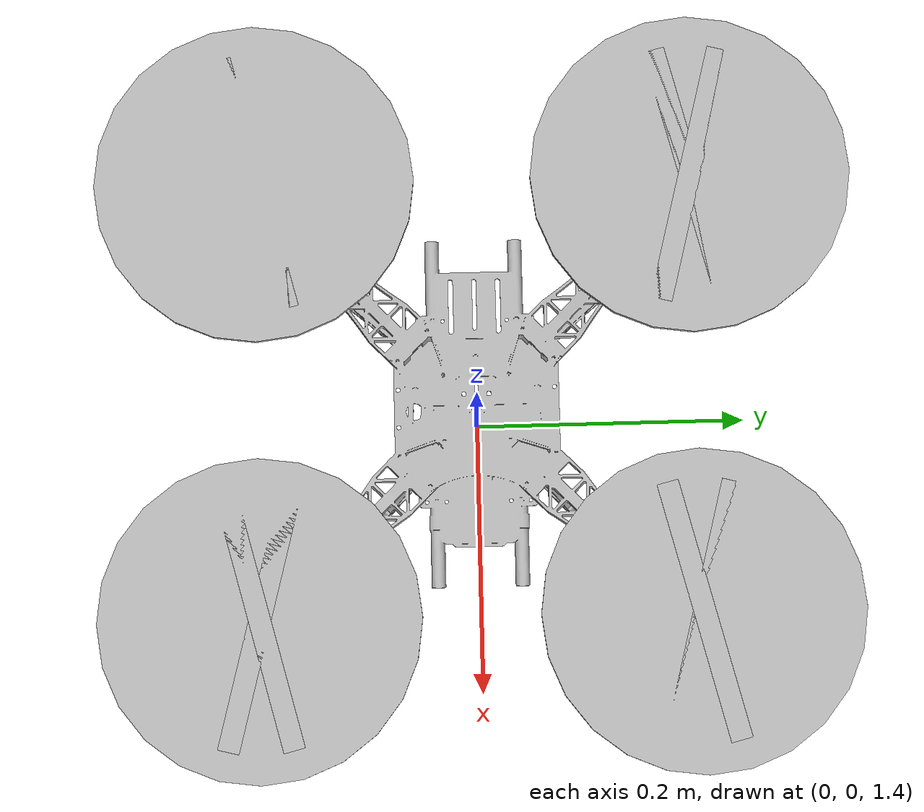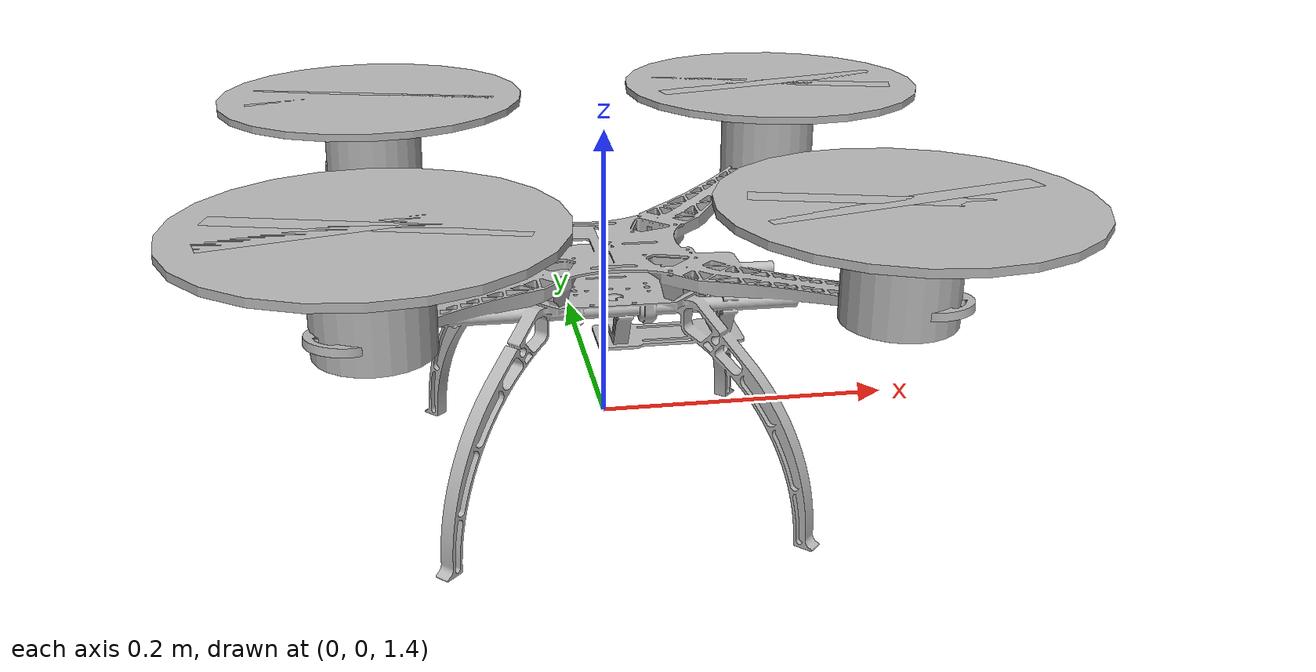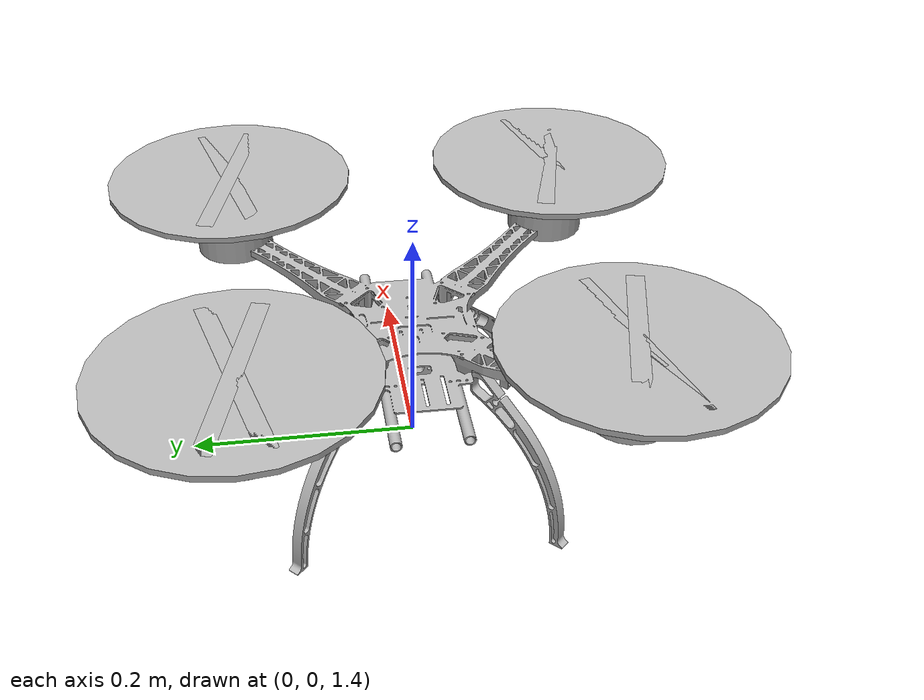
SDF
<?xml version="1.0" ?>
<sdf version="1.10">

  <world name="mundo_s500">
<!-- Quadricoptero -->
    <include>
      <uri>model://quadricoptero</uri>
      <name>quadricoptero</name>
      <pose>0 0 1 0 0 0</pose>
    </include>
    <!-- Physics -->
    <plugin filename="gz-sim-physics-system"
            name="gz::sim::systems::Physics">
    </plugin>

    <!-- Scene -->
    <plugin filename="gz-sim-scene-broadcaster-system"
            name="gz::sim::systems::SceneBroadcaster">
    </plugin>

    <!-- Sensors -->
    <plugin filename="gz-sim-sensors-system"
            name="gz::sim::systems::Sensors">
        <render_engine>ogre2</render_engine>
    </plugin>

    <!-- IMU -->
    <plugin filename="gz-sim-imu-system"
            name="gz::sim::systems::Imu">
    </plugin>

    <!-- Gravidade -->
    <gravity>0 0 -9.81</gravity>

    <!-- Física -->
    <physics name="default_physics" type="ode">
      <max_step_size>0.001</max_step_size>
      <real_time_factor>1</real_time_factor>
      <real_time_update_rate>1000</real_time_update_rate>

    <!-- Sol -->
    <light name="sol" type="directional">
      <pose>0 0 10 0 0 0</pose>
      <cast_shadows>true</cast_shadows>
      <direction>-0.5 0.5 -1</direction>
    </light>

    <!-- Chão -->
    <model name="chao">
      <static>true</static>
      <link name="link">

        <collision name="collision">
          <geometry>
            <plane>
              <normal>0 0 1</normal>
              <size>100 100</size>
            </plane>
          </geometry>
        </collision>

        <visual name="visual">
          <geometry>
            <plane>
              <normal>0 0 1</normal>
              <size>100 100</size>
            </plane>
          </geometry>
        </visual>

      </link>
    </model>
    </physics>
  </world>
</sdf>

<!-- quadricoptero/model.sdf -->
<sdf version="1.10">

  <model name="quadricoptero">

    <!-- Corpo físico principal -->
    <link name="base_link">

      <pose>0 0 0.5 0 0 0</pose>

      <inertial>
        <mass>1.5</mass>
        <inertia>
          <ixx>0.02</ixx>
          <iyy>0.02</iyy>
          <izz>0.03</izz>
          <ixy>0</ixy>
          <ixz>0</ixz>
          <iyz>0</iyz>
        </inertia>
      </inertial>

      <!-- Colisão simplificada -->
      <collision name="collision">
        <geometry>
          <box>
            <size>0.40 0.40 0.15</size>
          </box>
        </geometry>
      </collision>

      <!-- Modelo 3D do S500 vindo do Ansys -->
      <visual name="s500_visual">

        <geometry>
          <mesh>
            <uri>model://quadricoptero/meshes/S500_Frame.stl</uri>
            <scale>1 1 1</scale>
          </mesh>
        </geometry>

      </visual>
      <!-- MOTORES DO S500 - VISUAL -->

      <!-- Motor 1 -->
      <visual name="motor_1_visual">
        <pose>0.15 0.15 0.05 0 0 0</pose>
        <geometry>
          <cylinder>
            <radius>0.035</radius>
            <length>0.06</length>
          </cylinder>
        </geometry>
      </visual>

      <!-- Motor 2 -->
      <visual name="motor_2_visual">
        <pose>-0.15 0.15 0.05 0 0 0</pose>
        <geometry>
          <cylinder>
            <radius>0.035</radius>
            <length>0.06</length>
          </cylinder>
        </geometry>
      </visual>

      <!-- Motor 3 -->
      <visual name="motor_3_visual">
        <pose>-0.15 -0.15 0.05 0 0 0</pose>
        <geometry>
          <cylinder>
            <radius>0.035</radius>
            <length>0.06</length>
          </cylinder>
        </geometry>
      </visual>

      <!-- Motor 4 -->
      <visual name="motor_4_visual">
        <pose>0.15 -0.15 0.05 0 0 0</pose>
        <geometry>
          <cylinder>
            <radius>0.035</radius>
            <length>0.06</length>
          </cylinder>
        </geometry>
      </visual>
<!-- ==================== HÉLICES ==================== -->

<!-- Hélice do Motor 1 -->
<visual name="helice_1_a">
  <pose>0.15 0.15 0.09 0 0 0.25</pose>
  <geometry>
    <box>
      <size>0.18 0.015 0.005</size>
    </box>
  </geometry>
</visual>

<visual name="helice_1_b">
  <pose>0.15 0.15 0.09 0 0 -0.25</pose>
  <geometry>
    <box>
      <size>0.18 0.015 0.005</size>
    </box>
  </geometry>
</visual>

<!-- Hélice do Motor 2 -->
<visual name="helice_2_a">
  <pose>-0.15 0.15 0.09 0 0 -0.25</pose>
  <geometry>
    <box>
      <size>0.18 0.015 0.005</size>
    </box>
  </geometry>
</visual>

<visual name="helice_2_b">
  <pose>-0.15 0.15 0.09 0 0 0.25</pose>
  <geometry>
    <box>
      <size>0.18 0.015 0.005</size>
    </box>
  </geometry>
</visual>

<!-- Hélice do Motor 3 -->
<visual name="helice_3_a">
  <pose>-0.15 -0.15 0.09 0 0 0.25</pose>
  <geometry>
    <box>
      <size>0.18 0.015 0.005</size>
    </box>
  </geometry>
</visual>

<visual name="helice_3_b">
  <pose>-0.15 -0.15 0.09 0 0 -0.25</pose>
  <geometry>
    <box>
      <size>0.18 0.015 0.005</size>
    </box>
  </geometry>
</visual>

<!-- Hélice do Motor 4 -->
<visual name="helice_4_a">
  <pose>0.15 -0.15 0.09 0 0 -0.25</pose>
  <geometry>
    <box>
      <size>0.18 0.015 0.005</size>
    </box>
  </geometry>
</visual>

<visual name="helice_4_b">
  <pose>0.15 -0.15 0.09 0 0 0.25</pose>
  <geometry>
    <box>
      <size>0.18 0.015 0.005</size>
    </box>
  </geometry>
</visual>
  <!-- ==================== IMU ==================== -->
<sensor name="imu_sensor" type="imu">
  <pose>0 0 0 0 0 0</pose>
  <always_on>1</always_on>
  <update_rate>200</update_rate>
  <visualize>false</visualize>
  <topic>imu</topic>
</sensor>
</link>
<!--                    ROTOR 1 - CCW                         -->

<link name="rotor_1">
  <pose>0.15 0.15 0.59 0 0 0</pose>

  <inertial>
    <mass>0.03</mass>
    <inertia>
      <ixx>0.00001</ixx>
      <iyy>0.00001</iyy>
      <izz>0.00002</izz>
      <ixy>0</ixy>
      <ixz>0</ixz>
      <iyz>0</iyz>
    </inertia>
  </inertial>

  <visual name="rotor_1_visual">
    <geometry>
      <cylinder>
        <radius>0.11</radius>
        <length>0.005</length>
      </cylinder>
    </geometry>
  </visual>
</link>

<joint name="rotor_1_joint" type="revolute">
  <parent>base_link</parent>
  <child>rotor_1</child>

  <axis>
    <xyz>0 0 1</xyz>
    <limit>
      <lower>-1e16</lower>
      <upper>1e16</upper>
    </limit>
    <dynamics>
      <damping>0.0001</damping>
    </dynamics>
  </axis>
</joint>

<!--                    ROTOR 2 - CW                          -->

<link name="rotor_2">
  <pose>-0.15 0.15 0.59 0 0 0</pose>

  <inertial>
    <mass>0.03</mass>
    <inertia>
      <ixx>0.00001</ixx>
      <iyy>0.00001</iyy>
      <izz>0.00002</izz>
      <ixy>0</ixy>
      <ixz>0</ixz>
      <iyz>0</iyz>
    </inertia>
  </inertial>

  <visual name="rotor_2_visual">
    <geometry>
      <cylinder>
        <radius>0.11</radius>
        <length>0.005</length>
      </cylinder>
    </geometry>
  </visual>
</link>

<joint name="rotor_2_joint" type="revolute">
  <parent>base_link</parent>
  <child>rotor_2</child>

  <axis>
    <xyz>0 0 1</xyz>
    <limit>
      <lower>-1e16</lower>
      <upper>1e16</upper>
    </limit>
    <dynamics>
      <damping>0.0001</damping>
    </dynamics>
  </axis>
</joint>

<!--                    ROTOR 3 - CW                          -->

<link name="rotor_3">
  <pose>-0.15 -0.15 0.59 0 0 0</pose>

  <inertial>
    <mass>0.03</mass>
    <inertia>
      <ixx>0.00001</ixx>
      <iyy>0.00001</iyy>
      <izz>0.00002</izz>
      <ixy>0</ixy>
      <ixz>0</ixz>
      <iyz>0</iyz>
    </inertia>
  </inertial>

  <visual name="rotor_3_visual">
    <geometry>
      <cylinder>
        <radius>0.11</radius>
        <length>0.005</length>
      </cylinder>
    </geometry>
  </visual>
</link>

<joint name="rotor_3_joint" type="revolute">
  <parent>base_link</parent>
  <child>rotor_3</child>

  <axis>
    <xyz>0 0 1</xyz>
    <limit>
      <lower>-1e16</lower>
      <upper>1e16</upper>
    </limit>
    <dynamics>
      <damping>0.0001</damping>
    </dynamics>
  </axis>
</joint>

<!--                    ROTOR 4 - CCW                         -->

<link name="rotor_4">
  <pose>0.15 -0.15 0.59 0 0 0</pose>

  <inertial>
    <mass>0.03</mass>
    <inertia>
      <ixx>0.00001</ixx>
      <iyy>0.00001</iyy>
      <izz>0.00002</izz>
      <ixy>0</ixy>
      <ixz>0</ixz>
      <iyz>0</iyz>
    </inertia>
  </inertial>

  <visual name="rotor_4_visual">
    <geometry>
      <cylinder>
        <radius>0.11</radius>
        <length>0.005</length>
      </cylinder>
    </geometry>
  </visual>
</link>

<joint name="rotor_4_joint" type="revolute">
  <parent>base_link</parent>
  <child>rotor_4</child>

  <axis>
    <xyz>0 0 1</xyz>
    <limit>
      <lower>-1e16</lower>
      <upper>1e16</upper>
    </limit>
    <dynamics>
      <damping>0.0001</damping>
    </dynamics>
  </axis>
</joint>

<!--             FÍSICA DO MOTOR / EMPUXO 1                   -->

<plugin
    filename="gz-sim-multicopter-motor-model-system"
    name="gz::sim::systems::MulticopterMotorModel">

  <robotNamespace>S500</robotNamespace>

  <jointName>rotor_1_joint</jointName>
  <linkName>rotor_1</linkName>

  <turningDirection>ccw</turningDirection>

  <timeConstantUp>0.0125</timeConstantUp>
  <timeConstantDown>0.025</timeConstantDown>

  <maxRotVelocity>800.0</maxRotVelocity>

  <motorConstant>8.54858e-06</motorConstant>
  <momentConstant>0.016</momentConstant>

  <commandSubTopic>gazebo/command/motor_speed</commandSubTopic>

  <actuator_number>0</actuator_number>

  <rotorDragCoefficient>8.06428e-05</rotorDragCoefficient>
  <rollingMomentCoefficient>1e-06</rollingMomentCoefficient>

  <motorSpeedPubTopic>motor_speed/0</motorSpeedPubTopic>

  <rotorVelocitySlowdownSim>10</rotorVelocitySlowdownSim>

  <motorType>velocity</motorType>

</plugin>

<!--             FÍSICA DO MOTOR / EMPUXO 2                   -->

<plugin
    filename="gz-sim-multicopter-motor-model-system"
    name="gz::sim::systems::MulticopterMotorModel">

  <robotNamespace>S500</robotNamespace>

  <jointName>rotor_2_joint</jointName>
  <linkName>rotor_2</linkName>

  <turningDirection>cw</turningDirection>

  <timeConstantUp>0.0125</timeConstantUp>
  <timeConstantDown>0.025</timeConstantDown>

  <maxRotVelocity>800.0</maxRotVelocity>

  <motorConstant>8.54858e-06</motorConstant>
  <momentConstant>0.016</momentConstant>

  <commandSubTopic>gazebo/command/motor_speed</commandSubTopic>

  <actuator_number>1</actuator_number>

  <rotorDragCoefficient>8.06428e-05</rotorDragCoefficient>
  <rollingMomentCoefficient>1e-06</rollingMomentCoefficient>

  <motorSpeedPubTopic>motor_speed/1</motorSpeedPubTopic>

  <rotorVelocitySlowdownSim>10</rotorVelocitySlowdownSim>

  <motorType>velocity</motorType>

</plugin>

<!--             FÍSICA DO MOTOR / EMPUXO 3                   -->

<plugin
    filename="gz-sim-multicopter-motor-model-system"
    name="gz::sim::systems::MulticopterMotorModel">

  <robotNamespace>S500</robotNamespace>

  <jointName>rotor_3_joint</jointName>
  <linkName>rotor_3</linkName>

  <turningDirection>cw</turningDirection>

  <timeConstantUp>0.0125</timeConstantUp>
  <timeConstantDown>0.025</timeConstantDown>

  <maxRotVelocity>800.0</maxRotVelocity>

  <motorConstant>8.54858e-06</motorConstant>
  <momentConstant>0.016</momentConstant>

  <commandSubTopic>gazebo/command/motor_speed</commandSubTopic>

  <actuator_number>2</actuator_number>

  <rotorDragCoefficient>8.06428e-05</rotorDragCoefficient>
  <rollingMomentCoefficient>1e-06</rollingMomentCoefficient>

  <motorSpeedPubTopic>motor_speed/2</motorSpeedPubTopic>

  <rotorVelocitySlowdownSim>10</rotorVelocitySlowdownSim>

  <motorType>velocity</motorType>

</plugin>

<!--             FÍSICA DO MOTOR / EMPUXO 4                   -->

<plugin
    filename="gz-sim-multicopter-motor-model-system"
    name="gz::sim::systems::MulticopterMotorModel">

  <robotNamespace>S500</robotNamespace>

  <jointName>rotor_4_joint</jointName>
  <linkName>rotor_4</linkName>

  <turningDirection>ccw</turningDirection>

  <timeConstantUp>0.0125</timeConstantUp>
  <timeConstantDown>0.025</timeConstantDown>

  <maxRotVelocity>800.0</maxRotVelocity>

  <motorConstant>8.54858e-06</motorConstant>
  <momentConstant>0.016</momentConstant>

  <commandSubTopic>gazebo/command/motor_speed</commandSubTopic>

  <actuator_number>3</actuator_number>

  <rotorDragCoefficient>8.06428e-05</rotorDragCoefficient>
  <rollingMomentCoefficient>1e-06</rollingMomentCoefficient>

  <motorSpeedPubTopic>motor_speed/3</motorSpeedPubTopic>

  <rotorVelocitySlowdownSim>10</rotorVelocitySlowdownSim>

  <motorType>velocity</motorType>

</plugin>

  </model>

</sdf>
